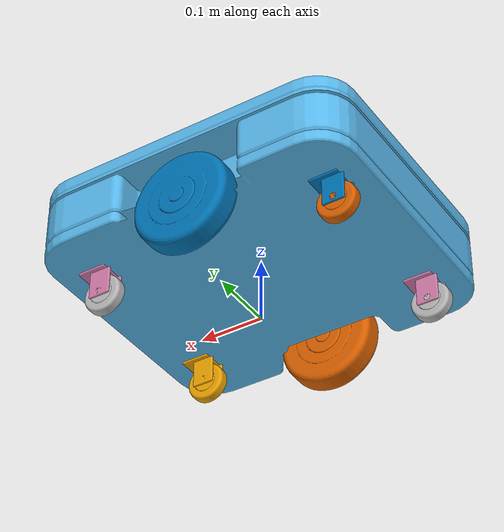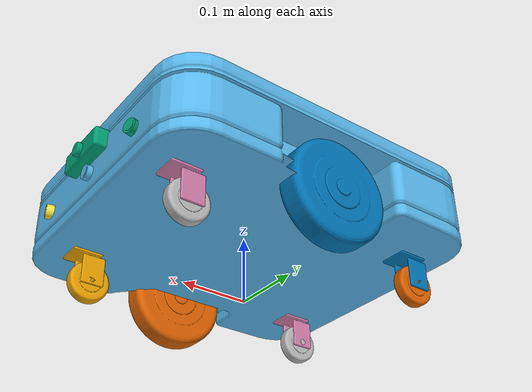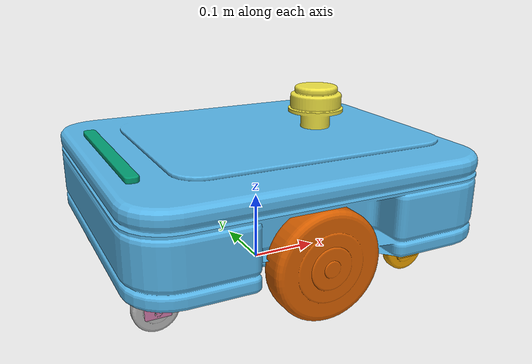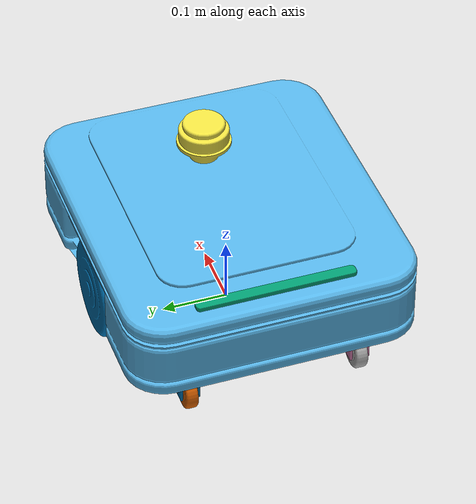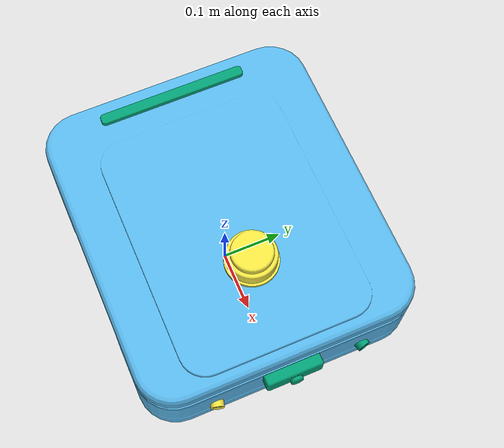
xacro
<?xml version='1.0' encoding='utf-8'?>
<robot name="amr">
  <link name="base_footprint" />
  <link name="base_link">
    <inertial>
      <origin xyz="0 0 0.002984" rpy="0 0 0" />
      <mass value="0.8" />
      <inertia ixx="0.0105867" ixy="0" ixz="0" iyy="0.0176267" iyz="0" izz="0.0262933" />
    </inertial>
    <visual>
      <origin xyz="0 0 0.003" rpy="0 0 0" />
      <geometry>
        <mesh filename="package://amr_description/mesh/base_link_visual.obj" />
      </geometry>
    </visual>
    <collision>
      <origin xyz="0 0 0.002984" rpy="0 0 0" />
      <geometry>
        <mesh filename="package://amr_description/mesh/base_link_collision.stl" />
      </geometry>
    </collision>
  </link>
  <link name="camera_link">
    <inertial>
      <origin xyz="-0.01175 0 0" rpy="0 0 0" />
      <mass value="0.01" />
      <inertia ixx="3.75e-06" ixy="0" ixz="0" iyy="1.5e-06" iyz="0" izz="3.75e-06" />
    </inertial>
    <visual>
      <origin xyz="-0.01175 0 0" rpy="0 0 0" />
      <geometry>
        <mesh filename="package://amr_description/mesh/camera_link_visual.obj" />
      </geometry>
    </visual>
    <collision>
      <origin xyz="-0.01175 0 0" rpy="0 0 0" />
      <geometry>
        <mesh filename="package://amr_description/mesh/camera_link_collision.stl" />
      </geometry>
    </collision>
  </link>
  <link name="camera_optical_frame" />
  <link name="drive_left_wheel_link">
    <inertial>
      <mass value="0.15" />
      <inertia ixx="0.000230937" ixy="0" ixz="0" iyy="0.000421875" iyz="0" izz="0.000230937" />
    </inertial>
    <visual>
      <geometry>
        <mesh filename="package://amr_description/mesh/drive_left_wheel_link_visual.obj" />
      </geometry>
    </visual>
    <collision>
      <origin xyz="0 0 0" rpy="1.570796 0 0" />
      <geometry>
        <cylinder radius="0.075" length="0.04" />
      </geometry>
    </collision>
  </link>
  <link name="drive_right_wheel_link">
    <inertial>
      <origin xyz="1.774728e-05 0 0" rpy="0 0 0" />
      <mass value="0.15" />
      <inertia ixx="0.000230937" ixy="0" ixz="0" iyy="0.000421875" iyz="0" izz="0.000230937" />
    </inertial>
    <visual>
      <geometry>
        <mesh filename="package://amr_description/mesh/drive_right_wheel_link_visual.obj" />
      </geometry>
    </visual>
    <collision>
      <origin xyz="0 0 0" rpy="1.570796 0 0" />
      <geometry>
        <cylinder radius="0.075" length="0.04" />
      </geometry>
    </collision>
  </link>
  <link name="front_left_caster_swivel_link">
    <inertial>
      <origin xyz="-0.003469 0 -0.025377" rpy="0 0 0" />
      <mass value="0.03" />
      <inertia ixx="1.3e-05" ixy="0" ixz="0" iyy="1.3e-05" iyz="0" izz="8e-06" />
    </inertial>
    <visual>
      <origin xyz="-0.0035 0 -0.024" rpy="0 0 0" />
      <geometry>
        <mesh filename="package://amr_description/mesh/front_left_caster_swivel_link_visual.obj" />
      </geometry>
    </visual>
    <collision>
      <origin xyz="-0.003469 0 -0.025377" rpy="0 0 0" />
      <geometry>
        <mesh filename="package://amr_description/mesh/front_left_caster_swivel_link_collision.stl" />
      </geometry>
    </collision>
  </link>
  <link name="front_left_caster_wheel_link">
    <inertial>
      <origin xyz="0.000424 0.001876 0" rpy="0 0 0" />
      <mass value="0.04" />
      <inertia ixx="1.44e-05" ixy="0" ixz="0" iyy="1.44e-05" iyz="0" izz="1.44e-05" />
    </inertial>
    <visual>
      <geometry>
        <mesh filename="package://amr_description/mesh/front_left_caster_wheel_link_visual.obj" />
      </geometry>
    </visual>
    <collision>
      <origin xyz="0 0 0" rpy="0 0 0" />
      <geometry>
        <sphere radius="0.03" />
      </geometry>
    </collision>
  </link>
  <link name="front_right_caster_swivel_link">
    <inertial>
      <origin xyz="-0.003469 0 -0.025285" rpy="0 0 0" />
      <mass value="0.03" />
      <inertia ixx="1.3e-05" ixy="0" ixz="0" iyy="1.3e-05" iyz="0" izz="8e-06" />
    </inertial>
    <visual>
      <origin xyz="-0.0035 0 -0.024" rpy="0 0 0" />
      <geometry>
        <mesh filename="package://amr_description/mesh/front_right_caster_swivel_link_visual.obj" />
      </geometry>
    </visual>
    <collision>
      <origin xyz="-0.003469 0 -0.025285" rpy="0 0 0" />
      <geometry>
        <mesh filename="package://amr_description/mesh/front_right_caster_swivel_link_collision.stl" />
      </geometry>
    </collision>
  </link>
  <link name="imu_link" />
  <link name="led_strip_link">
    <inertial>
      <origin xyz="0.000158 -0.000663 0" rpy="0 0 0" />
      <mass value="0.01" />
      <inertia ixx="7.53333e-05" ixy="0" ixz="0" iyy="6.66667e-07" iyz="0" izz="7.53333e-05" />
    </inertial>
    <visual>
      <geometry>
        <mesh filename="package://amr_description/mesh/led_strip_link_visual.obj" />
      </geometry>
    </visual>
    <collision>
      <origin xyz="0.000158 -0.000663 0" rpy="0 0 0" />
      <geometry>
        <mesh filename="package://amr_description/mesh/led_strip_link_collision.stl" />
      </geometry>
    </collision>
  </link>
  <link name="lidar_link">
    <inertial>
      <origin xyz="0 0 -0.009" rpy="0 0 0" />
      <mass value="0.05" />
      <inertia ixx="2.19792e-05" ixy="0" ixz="0" iyy="2.19792e-05" iyz="0" izz="3.0625e-05" />
    </inertial>
    <visual>
      <origin xyz="0 0 -0.009" rpy="0 0 0" />
      <geometry>
        <mesh filename="package://amr_description/mesh/lidar_link_visual.obj" />
      </geometry>
    </visual>
    <collision>
      <origin xyz="0 0 -0.009" rpy="0 0 0" />
      <geometry>
        <mesh filename="package://amr_description/mesh/lidar_link_collision.stl" />
      </geometry>
    </collision>
  </link>
  <link name="rear_left_caster_swivel_link">
    <inertial>
      <origin xyz="-0.003469 0 -0.025377" rpy="0 0 0" />
      <mass value="0.03" />
      <inertia ixx="1.3e-05" ixy="0" ixz="0" iyy="1.3e-05" iyz="0" izz="8e-06" />
    </inertial>
    <visual>
      <origin xyz="-0.0035 0 -0.024" rpy="0 0 0" />
      <geometry>
        <mesh filename="package://amr_description/mesh/rear_left_caster_swivel_link_visual.obj" />
      </geometry>
    </visual>
    <collision>
      <origin xyz="-0.003469 0 -0.025377" rpy="0 0 0" />
      <geometry>
        <mesh filename="package://amr_description/mesh/rear_left_caster_swivel_link_collision.stl" />
      </geometry>
    </collision>
  </link>
  <link name="rear_left_caster_wheel_link">
    <inertial>
      <origin xyz="1.490116e-08 0 0" rpy="0 0 0" />
      <mass value="0.04" />
      <inertia ixx="1.44e-05" ixy="0" ixz="0" iyy="1.44e-05" iyz="0" izz="1.44e-05" />
    </inertial>
    <visual>
      <origin xyz="1.490116e-08 0 0" rpy="0 0 0" />
      <geometry>
        <mesh filename="package://amr_description/mesh/rear_left_caster_wheel_link_visual.obj" />
      </geometry>
    </visual>
    <collision>
      <origin xyz="0 0 0" rpy="0 0 0" />
      <geometry>
        <sphere radius="0.03" />
      </geometry>
    </collision>
  </link>
  <link name="rear_right_caster_swivel_link">
    <inertial>
      <origin xyz="-0.003469 0 -0.025285" rpy="0 0 0" />
      <mass value="0.03" />
      <inertia ixx="1.3e-05" ixy="0" ixz="0" iyy="1.3e-05" iyz="0" izz="8e-06" />
    </inertial>
    <visual>
      <origin xyz="-0.0035 0 -0.024" rpy="0 0 0" />
      <geometry>
        <mesh filename="package://amr_description/mesh/rear_right_caster_swivel_link_visual.obj" />
      </geometry>
    </visual>
    <collision>
      <origin xyz="-0.003469 0 -0.025285" rpy="0 0 0" />
      <geometry>
        <mesh filename="package://amr_description/mesh/rear_right_caster_swivel_link_collision.stl" />
      </geometry>
    </collision>
  </link>
  <link name="rear_right_caster_wheel_link">
    <inertial>
      <origin xyz="1.490116e-08 -0.001876 0" rpy="0 0 0" />
      <mass value="0.04" />
      <inertia ixx="1.44e-05" ixy="0" ixz="0" iyy="1.44e-05" iyz="0" izz="1.44e-05" />
    </inertial>
    <visual>
      <origin xyz="1.490116e-08 0 0" rpy="0 0 0" />
      <geometry>
        <mesh filename="package://amr_description/mesh/rear_right_caster_wheel_link_visual.obj" />
      </geometry>
    </visual>
    <collision>
      <origin xyz="0 0 0" rpy="0 0 0" />
      <geometry>
        <sphere radius="0.03" />
      </geometry>
    </collision>
  </link>
  <link name="front_right_caster_wheel_link">
    <inertial>
      <origin xyz="0.000378 0 0" rpy="0 0 0" />
      <mass value="0.04" />
      <inertia ixx="1.44e-05" ixy="0" ixz="0" iyy="1.44e-05" iyz="0" izz="1.44e-05" />
    </inertial>
    <visual>
      <geometry>
        <mesh filename="package://amr_description/mesh/ront_right_caster_wheel_link_visual.obj" />
      </geometry>
    </visual>
    <collision>
      <origin xyz="0 0 0" rpy="0 0 0" />
      <geometry>
        <sphere radius="0.03" />
      </geometry>
    </collision>
  </link>
  <link name="ultrasonic_center_link">
    <inertial>
      <origin xyz="-0.00575 0 -7.450581e-09" rpy="0 0 0" />
      <mass value="0.005" />
      <inertia ixx="1.01042e-06" ixy="0" ixz="0" iyy="3.33333e-07" iyz="0" izz="1.01042e-06" />
    </inertial>
    <visual>
      <origin xyz="-0.00575 0 -7.450581e-09" rpy="0 0 0" />
      <geometry>
        <mesh filename="package://amr_description/mesh/ultrasonic_center_link_visual.obj" />
      </geometry>
    </visual>
    <collision>
      <origin xyz="-0.00575 0 -7.450581e-09" rpy="0 0 0" />
      <geometry>
        <mesh filename="package://amr_description/mesh/ultrasonic_center_link_collision.stl" />
      </geometry>
    </collision>
  </link>
  <link name="ultrasonic_left_link">
    <inertial>
      <origin xyz="-0.00575 7.450581e-09 -7.450581e-09" rpy="0 0 0" />
      <mass value="0.005" />
      <inertia ixx="1.01042e-06" ixy="0" ixz="0" iyy="3.33333e-07" iyz="0" izz="1.01042e-06" />
    </inertial>
    <visual>
      <origin xyz="-0.00575 7.450581e-09 -7.450581e-09" rpy="0 0 0" />
      <geometry>
        <mesh filename="package://amr_description/mesh/ultrasonic_left_link_visual.obj" />
      </geometry>
    </visual>
    <collision>
      <origin xyz="-0.00575 7.450581e-09 -7.450581e-09" rpy="0 0 0" />
      <geometry>
        <mesh filename="package://amr_description/mesh/ultrasonic_left_link_collision.stl" />
      </geometry>
    </collision>
  </link>
  <link name="ultrasonic_right_link">
    <inertial>
      <origin xyz="-0.00575 -7.450581e-09 -7.450581e-09" rpy="0 0 0" />
      <mass value="0.005" />
      <inertia ixx="1.01042e-06" ixy="0" ixz="0" iyy="3.33333e-07" iyz="0" izz="1.01042e-06" />
    </inertial>
    <visual>
      <origin xyz="-0.00575 -7.450581e-09 -7.450581e-09" rpy="0 0 0" />
      <geometry>
        <mesh filename="package://amr_description/mesh/ultrasonic_right_link_visual.obj" />
      </geometry>
    </visual>
    <collision>
      <origin xyz="-0.00575 -7.450581e-09 -7.450581e-09" rpy="0 0 0" />
      <geometry>
        <mesh filename="package://amr_description/mesh/ultrasonic_right_link_collision.stl" />
      </geometry>
    </collision>
  </link>
  <joint name="base_link_joint" type="fixed">
    <origin xyz="0 0 0.13" rpy="0 0 0" />
    <parent link="base_footprint" />
    <child link="base_link" />
  </joint>
  <joint name="camera_joint" type="fixed">
    <origin xyz="0.27 0 0.015" rpy="0 0 0" />
    <parent link="base_link" />
    <child link="camera_link" />
  </joint>
  <joint name="camera_optical_joint" type="fixed">
    <origin xyz="0 0 0" rpy="-1.570796 0 -1.570796" />
    <parent link="camera_link" />
    <child link="camera_optical_frame" />
  </joint>
  <joint name="drive_left_wheel_joint" type="continuous">
    <origin xyz="0 0.192 -0.055" rpy="0 0 0" />
    <parent link="base_link" />
    <child link="drive_left_wheel_link" />
    <axis xyz="0 1 0" />
    <limit effort="10" velocity="20" />
  </joint>
  <joint name="drive_right_wheel_joint" type="continuous">
    <origin xyz="0 -0.192 -0.055" rpy="0 0 0" />
    <parent link="base_link" />
    <child link="drive_right_wheel_link" />
    <axis xyz="0 1 0" />
    <limit effort="10" velocity="20" />
  </joint>
  <joint name="front_left_caster_swivel_joint" type="fixed">
    <origin xyz="0.19 0.13 -0.06" rpy="0 0 0" />
    <parent link="base_link" />
    <child link="front_left_caster_swivel_link" />
  </joint>
  <joint name="front_left_caster_wheel_joint" type="continuous">
    <origin xyz="-0.012 0 -0.04" rpy="0 0 0" />
    <parent link="front_left_caster_swivel_link" />
    <child link="front_left_caster_wheel_link" />
    <axis xyz="0 1 0" />
    <limit effort="2" velocity="10" />
  </joint>
  <joint name="front_right_caster_swivel_joint" type="fixed">
    <origin xyz="0.19 -0.13 -0.06" rpy="0 0 0" />
    <parent link="base_link" />
    <child link="front_right_caster_swivel_link" />
  </joint>
  <joint name="front_right_caster_wheel_joint" type="continuous">
    <origin xyz="-0.012 0 -0.04" rpy="0 0 0" />
    <parent link="front_right_caster_swivel_link" />
    <child link="front_right_caster_wheel_link" />
    <axis xyz="0 1 0" />
    <limit effort="2" velocity="10" />
  </joint>
  <joint name="imu_joint" type="fixed">
    <origin xyz="0 0 -0.13" rpy="0 0 0" />
    <parent link="base_link" />
    <child link="imu_link" />
  </joint>
  <joint name="led_strip_joint" type="fixed">
    <origin xyz="-0.215 0 0.064" rpy="0 0 0" />
    <parent link="base_link" />
    <child link="led_strip_link" />
  </joint>
  <joint name="lidar_joint" type="fixed">
    <origin xyz="0.1 0 0.106" rpy="0 0 0" />
    <parent link="base_link" />
    <child link="lidar_link" />
  </joint>
  <joint name="rear_left_caster_swivel_joint" type="fixed">
    <origin xyz="-0.19 0.13 -0.06" rpy="0 0 0" />
    <parent link="base_link" />
    <child link="rear_left_caster_swivel_link" />
  </joint>
  <joint name="rear_left_caster_wheel_joint" type="continuous">
    <origin xyz="-0.012 0 -0.04" rpy="0 0 0" />
    <parent link="rear_left_caster_swivel_link" />
    <child link="rear_left_caster_wheel_link" />
    <axis xyz="0 1 0" />
    <limit effort="2" velocity="10" />
  </joint>
  <joint name="rear_right_caster_swivel_joint" type="fixed">
    <origin xyz="-0.19 -0.13 -0.06" rpy="0 0 0" />
    <parent link="base_link" />
    <child link="rear_right_caster_swivel_link" />
  </joint>
  <joint name="rear_right_caster_wheel_joint" type="continuous">
    <origin xyz="-0.012 0 -0.04" rpy="0 0 0" />
    <parent link="rear_right_caster_swivel_link" />
    <child link="rear_right_caster_wheel_link" />
    <axis xyz="0 1 0" />
    <limit effort="2" velocity="10" />
  </joint>
  <joint name="ultrasonic_center_joint" type="fixed">
    <origin xyz="0.258 0 -0.015" rpy="0 0 0" />
    <parent link="base_link" />
    <child link="ultrasonic_center_link" />
  </joint>
  <joint name="ultrasonic_left_joint" type="fixed">
    <origin xyz="0.258 0.12 -0.015" rpy="0 0 0.261799" />
    <parent link="base_link" />
    <child link="ultrasonic_left_link" />
  </joint>
  <joint name="ultrasonic_right_joint" type="fixed">
    <origin xyz="0.258 -0.12 -0.015" rpy="0 0 -0.261799" />
    <parent link="base_link" />
    <child link="ultrasonic_right_link" />
  </joint>
  <ros2_control name="GazeboSimSystem" type="system">
    <hardware>
      <plugin>gz_ros2_control/GazeboSimSystem</plugin>
    </hardware>
    <joint name="drive_left_wheel_joint">
      <command_interface name="velocity" />
      <state_interface name="position" />
      <state_interface name="velocity" />
    </joint>
    <joint name="drive_right_wheel_joint">
      <command_interface name="velocity" />
      <state_interface name="position" />
      <state_interface name="velocity" />
    </joint>
    <joint name="front_left_caster_wheel_joint">
      <state_interface name="position" />
      <state_interface name="velocity" />
    </joint>
    <joint name="front_right_caster_wheel_joint">
      <state_interface name="position" />
      <state_interface name="velocity" />
    </joint>
    <joint name="rear_left_caster_wheel_joint">
      <state_interface name="position" />
      <state_interface name="velocity" />
    </joint>
    <joint name="rear_right_caster_wheel_joint">
      <state_interface name="position" />
      <state_interface name="velocity" />
    </joint>
  </ros2_control>
</robot>
